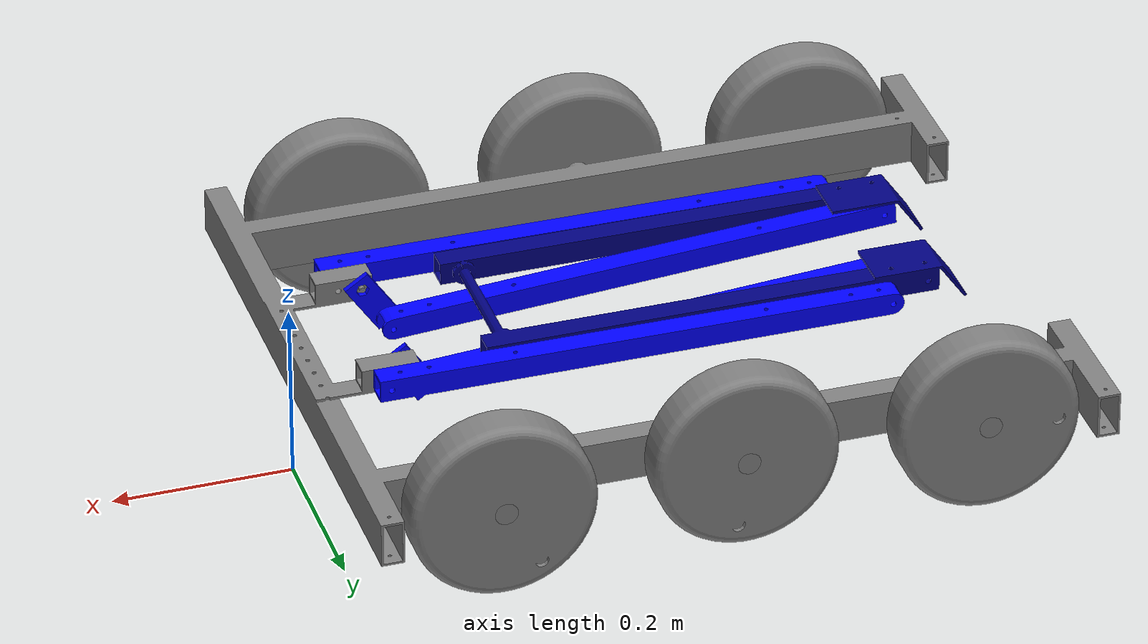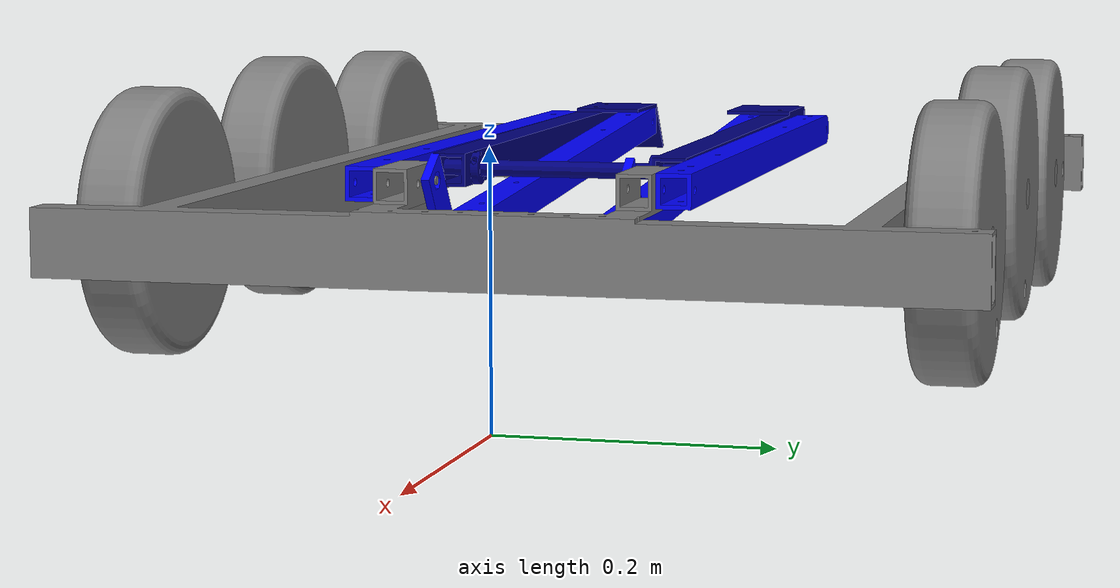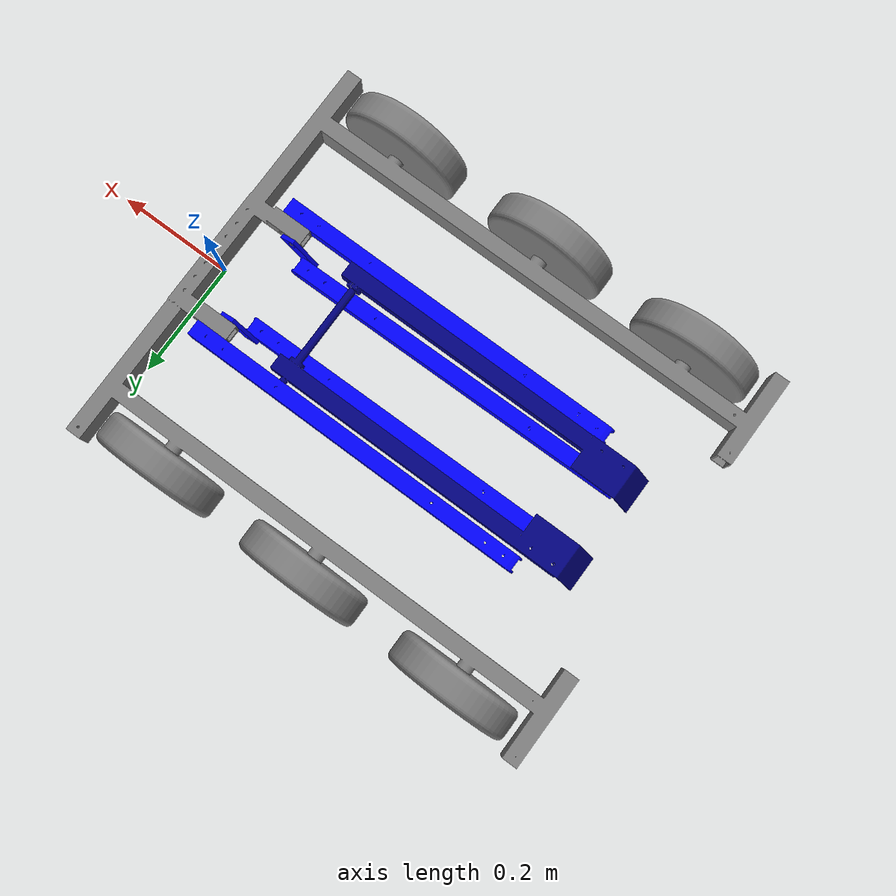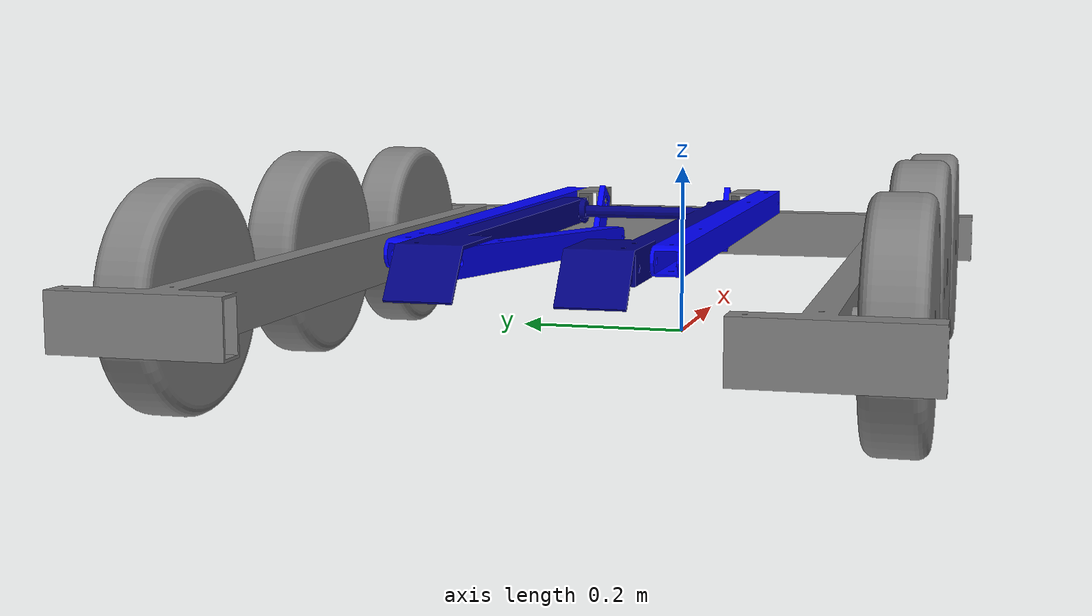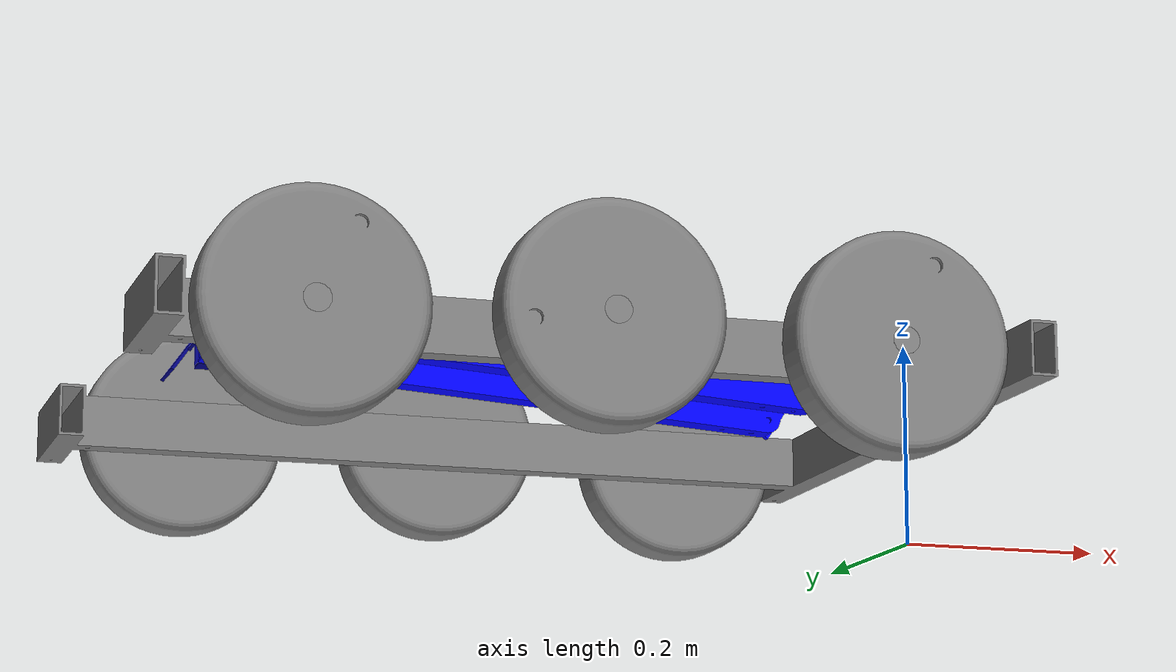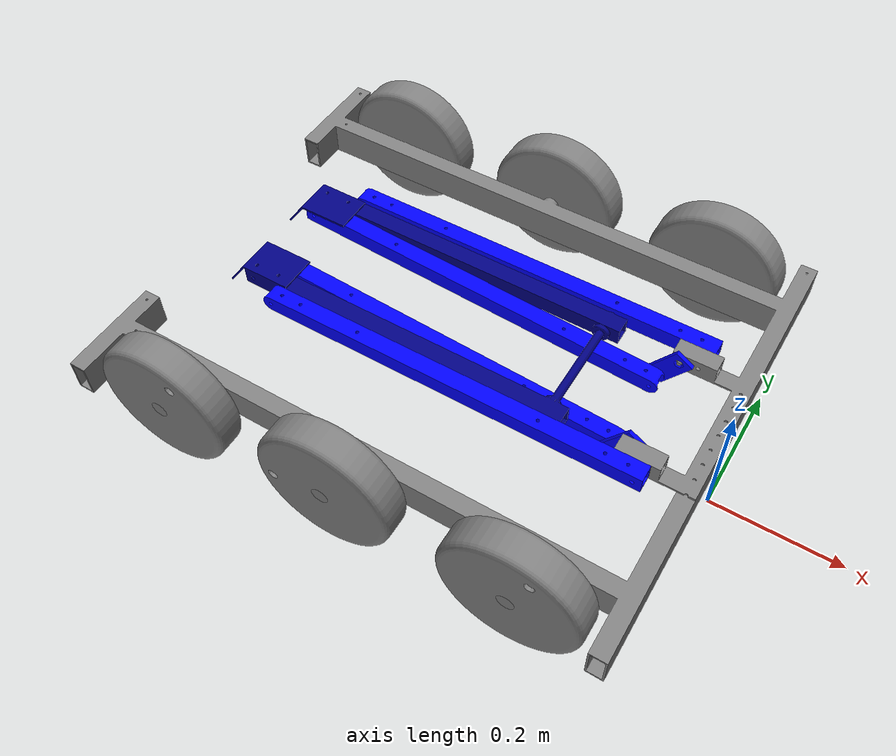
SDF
<?xml version="1.0" encoding="utf-8"?>
<sdf version="1.6">
  <model name="ClimberBot">
    <pose>0 0 0.12446 0 0 0</pose>
    <plugin name="clock" filename="libgz_clock.so">
      <topic>/gazebo/frc/time</topic>
    </plugin>
    <link name="Frame">
      <gravity>1</gravity>
      <self_collide>0</self_collide>
      <pose>-0.3510746437947 -2.97343237634824E-05 0.0014436640004077 -1.5707963267949 0 1.5707963267949</pose>
      <must_be_base_link>1</must_be_base_link>
      <velocity_decay>
        <linear>0</linear>
        <angular>0</angular>
      </velocity_decay>
      <inertial>
        <mass>30.02032480526164</mass>
        <pose>0 0 0 0 0 0</pose>
        <inertia>
          <ixx>0.171790686924595</ixx>
          <ixy>3.3395833458263E-07</ixy>
          <ixz>7.19648864492203E-05</ixz>
          <iyy>0.334028507267946</iyy>
          <iyz>0.000450659509649651</iyz>
          <izz>0.162408497885479</izz>
        </inertia>
      </inertial>
      <collision name="Frame_collision">
        <pose>2.97343237635603E-05 0.00144366400040762 0.0553253459660766 0 0 0</pose>
        <geometry>
          <mesh>
            <scale>1 1 1</scale>
            <uri>model://ClimberBot/meshes/Frame_col.STL</uri>
          </mesh>
        </geometry>
        <surface>
          <contact>
            <ode />
          </contact>
          <friction>
            <ode>
              <mu>1</mu>
              <mu2>1</mu2>
            </ode>
          </friction>
        </surface>
      </collision>
      <visual name="Frame_visual">
        <pose>2.97343237635603E-05 0.00144366400040762 0.0553253459660766 0 0 0</pose>
        <material>
          <ambient>0.501960784313725 0.501960784313725 0.501960784313725 1</ambient>
          <diffuse>0.501960784313725 0.501960784313725 0.501960784313725 1</diffuse>
        </material>
        <geometry>
          <mesh>
            <scale>1 1 1</scale>
            <uri>model://ClimberBot/meshes/Frame.STL</uri>
          </mesh>
        </geometry>
      </visual>
    </link>
    <link name="R1Wheel">
      <gravity>1</gravity>
      <self_collide>0</self_collide>
      <pose>-0.673116386398924 -0.303262709940692 0.00161185200133652 -1.5707963267949 0 1.5707963267949</pose>
      <must_be_base_link>0</must_be_base_link>
      <velocity_decay>
        <linear>0</linear>
        <angular>0.01</angular>
      </velocity_decay>
      <inertial>
        <mass>0.255325203825891</mass>
        <pose>0 0 0 0 0 0</pose>
        <inertia>
          <ixx>0</ixx>
          <ixy>0</ixy>
          <ixz>0</ixz>
          <iyy>0</iyy>
          <iyz>0</iyz>
          <izz>0</izz>
        </inertia>
      </inertial>
      <collision name="R1Wheel_collision">
        <pose>0.303262709940693 0.00161185200133637 -0.266716396638148 0 0 0</pose>
        <geometry>
          <mesh>
            <scale>1 1 1</scale>
            <uri>model://ClimberBot/meshes/R1Wheel_col.STL</uri>
          </mesh>
        </geometry>
        <surface>
          <contact>
            <ode />
          </contact>
          <friction>
            <ode>
              <mu>1</mu>
              <mu2>1</mu2>
            </ode>
          </friction>
        </surface>
      </collision>
      <visual name="R1Wheel_visual">
        <pose>0.303262709940693 0.00161185200133637 -0.266716396638148 0 0 0</pose>
        <material>
          <ambient>0.501960784313725 0.501960784313725 0.501960784313725 1</ambient>
          <diffuse>0.501960784313725 0.501960784313725 0.501960784313725 1</diffuse>
        </material>
        <geometry>
          <mesh>
            <scale>1 1 1</scale>
            <uri>model://ClimberBot/meshes/R1Wheel.STL</uri>
          </mesh>
        </geometry>
      </visual>
    </link>
    <joint name="Frame-R1Wheel" type="revolute">
      <parent>Frame</parent>
      <child>R1Wheel</child>
      <pose>-1.3290059307336E-05 -3.91479986604842E-05 -2.07350359620051E-05 0 0 0</pose>
      <axis>
        <xyz>-1 -1.22460635382238E-16 0</xyz>
        <dynamics>
          <damping>1</damping>
          <friction>1</friction>
        </dynamics>
        <limit>
          <effort>50</effort>
        </limit>
      </axis>
    </joint>
    <link name="R2Wheel">
      <gravity>1</gravity>
      <self_collide>0</self_collide>
      <pose>-0.408023151778347 -0.303262709940693 0.0104427983225408 -1.5707963267949 0 1.5707963267949</pose>
      <must_be_base_link>0</must_be_base_link>
      <velocity_decay>
        <linear>0</linear>
        <angular>0.01</angular>
      </velocity_decay>
      <inertial>
        <mass>0.255325203825891</mass>
        <pose>0 0 0 0 0 0</pose>
        <inertia>
          <ixx>0</ixx>
          <ixy>0</ixy>
          <ixz>0</ixz>
          <iyy>0</iyy>
          <iyz>0</iyz>
          <izz>0</izz>
        </inertia>
      </inertial>
      <collision name="R2Wheel_collision">
        <pose>0.303262709940693 0.0104427983225407 -0.00162316201757093 0 0 0</pose>
        <geometry>
          <mesh>
            <scale>1 1 1</scale>
            <uri>model://ClimberBot/meshes/R2Wheel_col.STL</uri>
          </mesh>
        </geometry>
        <surface>
          <contact>
            <ode />
          </contact>
          <friction>
            <ode>
              <mu>1</mu>
              <mu2>1</mu2>
            </ode>
          </friction>
        </surface>
      </collision>
      <visual name="R2Wheel_visual">
        <pose>0.303262709940693 0.0104427983225407 -0.00162316201757093 0 0 0</pose>
        <material>
          <ambient>0.501960784313725 0.501960784313725 0.501960784313725 1</ambient>
          <diffuse>0.501960784313725 0.501960784313725 0.501960784313725 1</diffuse>
        </material>
        <geometry>
          <mesh>
            <scale>1 1 1</scale>
            <uri>model://ClimberBot/meshes/R2Wheel.STL</uri>
          </mesh>
        </geometry>
      </visual>
    </link>
    <joint name="Frame-R2Wheel" type="revolute">
      <parent>Frame</parent>
      <child>R2Wheel</child>
      <pose>-1.32900593072249E-05 7.18157269403302E-06 4.37142142683622E-05 0 0 0</pose>
      <axis>
        <xyz>-1 0 0</xyz>
        <dynamics>
          <damping>1</damping>
          <friction>1</friction>
        </dynamics>
        <limit>
          <effort>50</effort>
        </limit>
      </axis>
    </joint>
    <link name="R3Wheel">
      <gravity>1</gravity>
      <self_collide>0</self_collide>
      <pose>-0.139721260811227 -0.303262709940693 0.00161005666783426 -1.5707963267949 0 1.5707963267949</pose>
      <must_be_base_link>0</must_be_base_link>
      <velocity_decay>
        <linear>0</linear>
        <angular>0.01</angular>
      </velocity_decay>
      <inertial>
        <mass>0.255325203825891</mass>
        <pose>0 0 0 0 0 0</pose>
        <inertia>
          <ixx>0</ixx>
          <ixy>0</ixy>
          <ixz>0</ixz>
          <iyy>0</iyy>
          <iyz>0</iyz>
          <izz>0</izz>
        </inertia>
      </inertial>
      <collision name="R3Wheel_collision">
        <pose>0.303262709940693 0.00161005666783423 0.266678728949549 0 0 0</pose>
        <geometry>
          <mesh>
            <scale>1 1 1</scale>
            <uri>model://ClimberBot/meshes/R3Wheel_col.STL</uri>
          </mesh>
        </geometry>
        <surface>
          <contact>
            <ode />
          </contact>
          <friction>
            <ode>
              <mu>1</mu>
              <mu2>1</mu2>
            </ode>
          </friction>
        </surface>
      </collision>
      <visual name="R3Wheel_visual">
        <pose>0.303262709940693 0.00161005666783423 0.266678728949549 0 0 0</pose>
        <material>
          <ambient>0.501960784313725 0.501960784313725 0.501960784313725 1</ambient>
          <diffuse>0.501960784313725 0.501960784313725 0.501960784313725 1</diffuse>
        </material>
        <geometry>
          <mesh>
            <scale>1 1 1</scale>
            <uri>model://ClimberBot/meshes/R3Wheel.STL</uri>
          </mesh>
        </geometry>
      </visual>
    </link>
    <joint name="Frame-R3Wheel" type="revolute">
      <parent>Frame</parent>
      <child>R3Wheel</child>
      <pose>-1.32900593072249E-05 -4.09433321690025E-05 -1.69160003058999E-05 0 0 0</pose>
      <axis>
        <xyz>-1 0 0</xyz>
        <dynamics>
          <damping>1</damping>
          <friction>1</friction>
        </dynamics>
        <limit>
          <effort>50</effort>
        </limit>
      </axis>
    </joint>
    <link name="L1Wheel">
      <gravity>1</gravity>
      <self_collide>0</self_collide>
      <pose>-0.673051394231998 0.303262709940693 0.00165295291430823 -1.5707963267949 0 1.5707963267949</pose>
      <must_be_base_link>0</must_be_base_link>
      <velocity_decay>
        <linear>0</linear>
        <angular>0.01</angular>
      </velocity_decay>
      <inertial>
        <mass>0.255325203825891</mass>
        <pose>0 0 0 0 0 0</pose>
        <inertia>
          <ixx>0</ixx>
          <ixy>0</ixy>
          <ixz>0</ixz>
          <iyy>0</iyy>
          <iyz>0</iyz>
          <izz>0</izz>
        </inertia>
      </inertial>
      <collision name="L1Wheel_collision">
        <pose>-0.303262709940693 0.00165295291430808 -0.266651404471222 0 0 0</pose>
        <geometry>
          <mesh>
            <scale>1 1 1</scale>
            <uri>model://ClimberBot/meshes/L1Wheel_col.STL</uri>
          </mesh>
        </geometry>
        <surface>
          <contact>
            <ode />
          </contact>
          <friction>
            <ode>
              <mu>1</mu>
              <mu2>1</mu2>
            </ode>
          </friction>
        </surface>
      </collision>
      <visual name="L1Wheel_visual">
        <pose>-0.303262709940693 0.00165295291430808 -0.266651404471222 0 0 0</pose>
        <material>
          <ambient>0.501960784313725 0.501960784313725 0.501960784313725 1</ambient>
          <diffuse>0.501960784313725 0.501960784313725 0.501960784313725 1</diffuse>
        </material>
        <geometry>
          <mesh>
            <scale>1 1 1</scale>
            <uri>model://ClimberBot/meshes/L1Wheel.STL</uri>
          </mesh>
        </geometry>
      </visual>
    </link>
    <joint name="Frame-L1Wheel" type="revolute">
      <parent>Frame</parent>
      <child>L1Wheel</child>
      <pose>0.000375096488045179 1.95291429993887E-06 4.42767701058222E-05 0 0 0</pose>
      <axis>
        <xyz>-1 0 0</xyz>
        <dynamics>
          <damping>1</damping>
          <friction>1</friction>
        </dynamics>
        <limit>
          <effort>50</effort>
        </limit>
      </axis>
    </joint>
    <link name="L2Wheel">
      <gravity>1</gravity>
      <self_collide>0</self_collide>
      <pose>-0.404776910127774 0.303262709940693 0.0104878780088853 -1.5707963267949 0 1.5707963267949</pose>
      <must_be_base_link>0</must_be_base_link>
      <velocity_decay>
        <linear>0</linear>
        <angular>0.01</angular>
      </velocity_decay>
      <inertial>
        <mass>0.255325203825891</mass>
        <pose>0 0 0 0 0 0</pose>
        <inertia>
          <ixx>0</ixx>
          <ixy>0</ixy>
          <ixz>0</ixz>
          <iyy>0</iyy>
          <iyz>0</iyz>
          <izz>0</izz>
        </inertia>
      </inertial>
      <collision name="L2Wheel_collision">
        <pose>-0.303262709940693 0.0104878780088852 0.00162307963300241 0 0 0</pose>
        <geometry>
          <mesh>
            <scale>1 1 1</scale>
            <uri>model://ClimberBot/meshes/L2Wheel_col.STL</uri>
          </mesh>
        </geometry>
        <surface>
          <contact>
            <ode />
          </contact>
          <friction>
            <ode>
              <mu>1</mu>
              <mu2>1</mu2>
            </ode>
          </friction>
        </surface>
      </collision>
      <visual name="L2Wheel_visual">
        <pose>-0.303262709940693 0.0104878780088852 0.00162307963300241 0 0 0</pose>
        <material>
          <ambient>0.501960784313725 0.501960784313725 0.501960784313725 1</ambient>
          <diffuse>0.501960784313725 0.501960784313725 0.501960784313725 1</diffuse>
        </material>
        <geometry>
          <mesh>
            <scale>1 1 1</scale>
            <uri>model://ClimberBot/meshes/L2Wheel.STL</uri>
          </mesh>
        </geometry>
      </visual>
    </link>
    <joint name="Frame-L2Wheel" type="revolute">
      <parent>Frame</parent>
      <child>L2Wheel</child>
      <pose>1.32900593072249E-05 4.38148899713081E-05 -6.53933729534775E-06 0 0 0</pose>
      <axis>
        <xyz>-1 2.82701482950913E-15 -8.64198840208855E-16</xyz>
        <dynamics>
          <damping>1</damping>
          <friction>1</friction>
        </dynamics>
        <limit>
          <effort>50</effort>
        </limit>
      </axis>
    </joint>
    <link name="L3Wheel">
      <gravity>1</gravity>
      <self_collide>0</self_collide>
      <pose>-0.139682225579056 0.303199220635695 0.00168938290110701 -1.5707963267949 0 1.5707963267949</pose>
      <must_be_base_link>0</must_be_base_link>
      <velocity_decay>
        <linear>0</linear>
        <angular>0.01</angular>
      </velocity_decay>
      <inertial>
        <mass>0.255325203825891</mass>
        <pose>0 0 0 0 0 0</pose>
        <inertia>
          <ixx>0</ixx>
          <ixy>0</ixy>
          <ixz>0</ixz>
          <iyy>0</iyy>
          <iyz>0</iyz>
          <izz>0</izz>
        </inertia>
      </inertial>
      <collision name="L3Wheel_collision">
        <pose>-0.303199220635695 0.00168938290110699 0.26671776418172 0 0 0</pose>
        <geometry>
          <mesh>
            <scale>1 1 1</scale>
            <uri>model://ClimberBot/meshes/L3Wheel_col.STL</uri>
          </mesh>
        </geometry>
        <surface>
          <contact>
            <ode />
          </contact>
          <friction>
            <ode>
              <mu>1</mu>
              <mu2>1</mu2>
            </ode>
          </friction>
        </surface>
      </collision>
      <visual name="L3Wheel_visual">
        <pose>-0.303199220635695 0.00168938290110699 0.26671776418172 0 0 0</pose>
        <material>
          <ambient>0.501960784313725 0.501960784313725 0.501960784313725 1</ambient>
          <diffuse>0.501960784313725 0.501960784313725 0.501960784313725 1</diffuse>
        </material>
        <geometry>
          <mesh>
            <scale>1 1 1</scale>
            <uri>model://ClimberBot/meshes/L3Wheel.STL</uri>
          </mesh>
        </geometry>
      </visual>
    </link>
    <joint name="Frame-L3Wheel" type="revolute">
      <parent>Frame</parent>
      <child>L3Wheel</child>
      <pose>1.32900593072804E-05 3.838290110375E-05 2.21192318655139E-05 0 0 0</pose>
      <axis>
        <xyz>-1 0 0</xyz>
        <dynamics>
          <damping>1</damping>
          <friction>1</friction>
        </dynamics>
        <limit>
          <effort>50</effort>
        </limit>
      </axis>
    </joint>
    <link name="Climber1">
      <gravity>1</gravity>
      <self_collide>0</self_collide>
      <pose>-0.377766700900613 -4.07700460166053E-16 0.0307545735435157 -1.5707963267949 0 1.5707963267949</pose>
      <must_be_base_link>0</must_be_base_link>
      <velocity_decay>
        <linear>0</linear>
        <angular>0</angular>
      </velocity_decay>
      <inertial>
        <mass>1.77832603470066</mass>
        <pose>0 0 0 0 0 0</pose>
        <inertia>
          <ixx>0.00321375368173924</ixx>
          <ixy>5.63245485001767E-15</ixy>
          <ixz>5.40745833527145E-17</ixz>
          <iyy>0.0174980858969123</iyy>
          <iyz>0.000433389151753912</iyz>
          <izz>0.0146229301642562</izz>
        </inertia>
      </inertial>
      <collision name="Climber1_collision">
        <pose>4.91581518021363E-16 0.0307545735435156 0.0286332888601632 0 0 0</pose>
        <geometry>
          <mesh>
            <scale>1 1 1</scale>
            <uri>model://ClimberBot/meshes/Climber1_col.STL</uri>
          </mesh>
        </geometry>
        <surface>
          <contact>
            <ode />
          </contact>
          <friction>
            <ode>
              <mu>0</mu>
              <mu2>0</mu2>
            </ode>
          </friction>
        </surface>
      </collision>
      <visual name="Climber1_visual">
        <pose>4.91581518021363E-16 0.0307545735435156 0.0286332888601632 0 0 0</pose>
        <material>
          <ambient>0 0 1 1</ambient>
          <diffuse>0 0 1 1</diffuse>
        </material>
        <geometry>
          <mesh>
            <scale>1 1 1</scale>
            <uri>model://ClimberBot/meshes/Climber1.STL</uri>
          </mesh>
        </geometry>
      </visual>
    </link>
    <joint name="Frame-Climber1" type="revolute">
      <parent>Frame</parent>
      <child>Climber1</child>
      <pose>-7.71297172489753E-16 -0.0105204264564844 -0.301566700900612 0 1.11022302462516E-16 3.14159265358991</pose>
      <frame name="climber1-frame"/>
      <axis>
        <xyz>1 0 0</xyz>
        <dynamics>
          <damping>1</damping>
          <friction>1</friction>
        </dynamics>
        <limit>
          <upper>0</upper>
          <lower>-0.7</lower>
          <effort>200</effort>
        </limit>
      </axis>
    </joint>
    <link name="Climber2">
      <gravity>1</gravity>
      <self_collide>0</self_collide>
      <pose>-0.470905991009128 -0.00297142421927649 0.0409337986199918 -1.5707963267949 0 1.5707963267949</pose>
      <must_be_base_link>0</must_be_base_link>
      <velocity_decay>
        <linear>0</linear>
        <angular>0</angular>
      </velocity_decay>
      <inertial>
        <mass>0.790365756487698</mass>
        <pose>0 0 0 0 0 0</pose>
        <inertia>
          <ixx>0.00839975269474826</ixx>
          <ixy>1.30683235970531E-07</ixy>
          <ixz>4.12114029020404E-05</ixz>
          <iyy>0.0136860179616977</iyy>
          <iyz>0.000158154045889581</iyz>
          <izz>0.00529400442329184</izz>
        </inertia>
      </inertial>
      <collision name="Climber2_collision">
        <pose>0.0029714242192766 0.0409337986199917 -0.0645060012483518 0 0 0</pose>
        <geometry>
          <mesh>
            <scale>1 1 1</scale>
            <uri>model://ClimberBot/meshes/Climber2_col.STL</uri>
          </mesh>
        </geometry>
        <surface>
          <contact>
            <ode />
          </contact>
          <friction>
            <ode>
              <mu>1</mu>
              <mu2>1</mu2>
            </ode>
          </friction>
        </surface>
      </collision>
      <visual name="Climber2_visual">
        <pose>0.0029714242192766 0.0409337986199917 -0.0645060012483518 0 0 0</pose>
        <material>
          <ambient>0 0 0.501960784313725 1</ambient>
          <diffuse>0 0 0.501960784313725 1</diffuse>
        </material>
        <geometry>
          <mesh>
            <scale>1 1 1</scale>
            <uri>model://ClimberBot/meshes/Climber2.STL</uri>
          </mesh>
        </geometry>
      </visual>
    </link>
    <joint name="Climber1-Climber2" type="revolute">
      <parent>Climber1</parent>
      <child>Climber2</child>
      <pose>0.000317671351160371 0.000941350784374191 0.164092537138493 0 0 0</pose>
      <axis>
        <xyz>1 0 0</xyz>
        <dynamics>
          <damping>1</damping>
          <friction>1</friction>
        </dynamics>
        <limit>
          <upper>0</upper>
          <lower>-1</lower>
          <effort>200</effort>
        </limit>
      </axis>
      <frame name="climber2-frame">
        <pose frame="climber1-frame"/>
      </frame>
    </joint>
    <plugin name="Frame-R1Wheel_motor" filename="libgz_dc_motor.so">
      <joint>Frame-R1Wheel</joint>
      <topic>/gazebo/frc/simulator/pwm/1</topic>
      <multiplier>20</multiplier>
    </plugin>
    <plugin name="Frame-R2Wheel_motor" filename="libgz_dc_motor.so">
      <joint>Frame-R2Wheel</joint>
      <topic>/gazebo/frc/simulator/pwm/1</topic>
      <multiplier>20</multiplier>
    </plugin>
    <plugin name="Frame-R3Wheel_motor" filename="libgz_dc_motor.so">
      <joint>Frame-R3Wheel</joint>
      <topic>/gazebo/frc/simulator/pwm/3</topic>
      <multiplier>20</multiplier>
    </plugin>
    <plugin name="Frame-L1Wheel_motor" filename="libgz_dc_motor.so">
      <joint>Frame-L1Wheel</joint>
      <topic>/gazebo/frc/simulator/pwm/4</topic>
      <multiplier>20</multiplier>
    </plugin>
    <plugin name="Frame-L2Wheel_motor" filename="libgz_dc_motor.so">
      <joint>Frame-L2Wheel</joint>
      <topic>/gazebo/frc/simulator/pwm/4</topic>
      <multiplier>20</multiplier>
    </plugin>
    <plugin name="Frame-L3Wheel_motor" filename="libgz_dc_motor.so">
      <joint>Frame-L3Wheel</joint>
      <topic>/gazebo/frc/simulator/pwm/4</topic>
      <multiplier>20</multiplier>
    </plugin>
    <plugin name="Frame-Climber1_motor" filename="libgz_dc_motor.so">
      <joint>Frame-Climber1</joint>
      <topic>/gazebo/frc/simulator/pwm/6</topic>
      <multiplier>150</multiplier>
    </plugin>
    <plugin name="Frame-Climber2_motor" filename="libgz_dc_motor.so">
      <joint>Climber1-Climber2</joint>
      <topic>/gazebo/frc/simulator/pwm/6</topic>
      <multiplier>150</multiplier>
    </plugin>
  </model>
</sdf>
